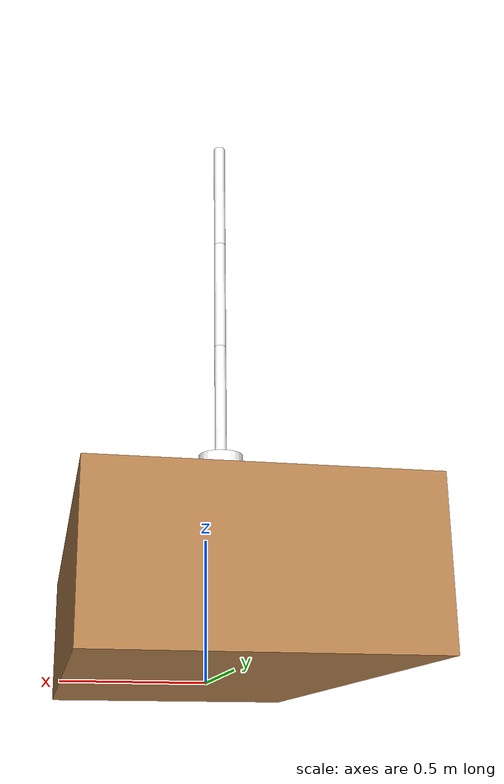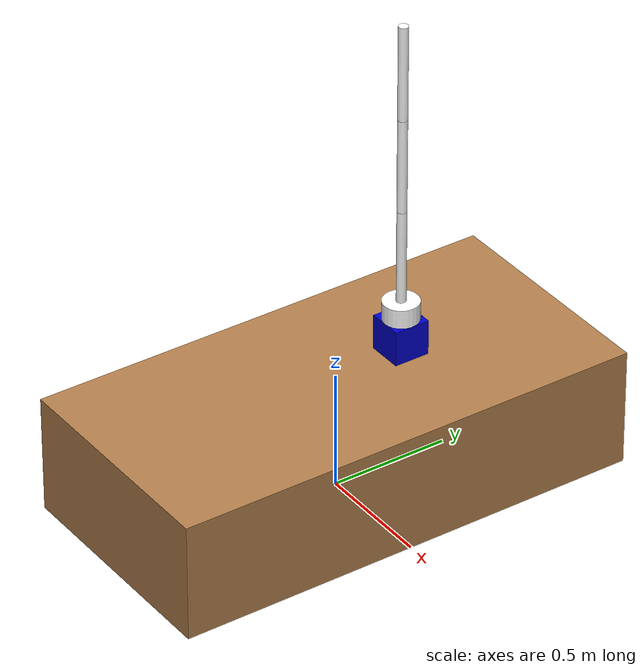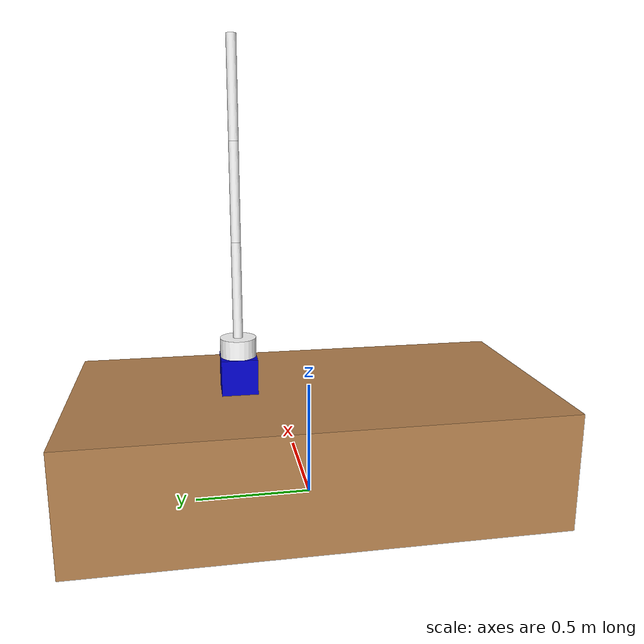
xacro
<?xml version="1.0"?>
<robot name="rosarm" xmlns:xacro="http://ros.org/wiki/xacro" >

 <material name="blue">
 	<color rgba="0 0 0.8 1"/>
 </material>

 <material name="white">
	 <color rgba="1 1 1 1"/>
 </material>

	<link name="world"/>

 <xacro:include filename="$(find rosarm_pkg)/urdf/table.urdf.xacro" />

 <xacro:property name="m" value="2" />
 <xacro:property name="l1" value="0.15" />
 <xacro:property name="b1" value="0.15" />
 <xacro:property name="h1" value="0.15" />

	<link name="base_link">
		<visual>
			<origin rpy="0 0 0" xyz="0 0 0"/>
			<geometry>
					<box size="${l1} ${b1} ${h1}"/>
			</geometry>
			<material name="blue"/>
		</visual>

		<collision name="collision_base">
			<geometry>
					<box size="${l1} ${b1} ${h1}"/>
			</geometry>
		</collision>

		<inertial>
			<mass value="${m}"/>
			<origin rpy="0 0 0" xyz="0 0 0"/>
			<inertia ixx="${m*h1*b1/12.0}" ixy="0" ixz="0" iyy="${m*l1*h1/12.0}" iyz="0" izz="${m*l1*b1/12.0}"/>
		</inertial>
	</link>

	<joint name="world_to_base" type="fixed">
		<parent link="world"/>
		<child link="base_link"/>
		<origin xyz="0 0.3 ${ht+h1/2}" rpy="0 0 0"/>
	</joint>

 <xacro:property name="l2" value="0.08" />
 <xacro:property name="r2" value="0.075" />
 <xacro:property name="m2" value="0.5" />

	<link name="base_z">
		<visual>
			<origin rpy="0 0 0" xyz="0 0 0"/>
			<geometry>
					<cylinder radius="${r2}" length="${l2}" />
			</geometry>
			<material name="white"/>
		</visual>

		<collision name="collision_right_wheel">
			<origin rpy="0 0 0" xyz="0 0 0"/>
			<geometry>
				<cylinder length="${l2}" radius="${r2}"/>
			</geometry>
		</collision>

		<inertial>
			<mass value="${m2}"/>
			<origin rpy="0 0 0" xyz="0 0 0"/>
			<inertia ixx="${m2*((3*r2*r2)+(l2*l2))/12.0}" ixy="0" ixz="0" iyy="${m2*((3*r2*r2)+(l2*l2))/12.0}" iyz="0" izz="${(m2*r2*r2)/2.0}"/>
		</inertial>
	</link>

	<joint name="joint_1" type="revolute">
		<origin rpy="0 0 0" xyz="0 0 ${l1/2+l2/2}"/>
		<child link="base_z"/>
		<parent link="base_link"/>
		<axis xyz="0 0 1"/>
		<limit upper="3.14" lower="-3.14" effort="10000" velocity="1000"/>
		<joint_properties damping="1.0" friction="1.0"/>
	</joint>

 <xacro:property name="l3" value="0.4" />
 <xacro:property name="r3" value="0.02" />
 <xacro:property name="m3" value="0.1" />

	<link name="link_1">
		<visual>
			<origin rpy="0 0 0" xyz="0 0 ${l3/2}"/>
			<geometry>
					<cylinder radius="${r3}" length="${l3}" />
			</geometry>
			<material name="white"/>
		</visual>

		<collision name="collision_link_1">
			<origin rpy="0 0 0" xyz="0 0 ${l3/2}"/>
			<geometry>
				<cylinder length="${l3}" radius="${r3}"/>
			</geometry>
		</collision>

		<inertial>
			<mass value="${m3}"/>
			<origin rpy="0 0 0" xyz="0 0 ${l3/2}"/>
			<inertia ixx="${m3*((3*r3*r3)+(l3*l3))/12.0}" ixy="0" ixz="0" iyy="${m3*((3*r3*r3)+(l3*l3))/12.0}" iyz="0" izz="${(m3*r3*r3)/2.0}"/>
		</inertial>
	</link>

	<joint name="shoulder" type="revolute">
		<origin rpy="0 0 0" xyz="0 0 ${l2/2}"/>
		<child link="link_1"/>
		<parent link="base_z"/>
		<axis xyz="1 0 0"/>
		<limit upper="3.14" lower="-3.14" effort="10000" velocity="1000"/>
		<joint_properties damping="1.0" friction="1.0"/>
	</joint>

	<link name="link_2">
		<visual>
			<origin rpy="0 0 0" xyz="0 0 ${l3/2}"/>
			<geometry>
					<cylinder radius="${r3}" length="${l3}" />
			</geometry>
			<material name="white"/>
		</visual>

		<collision name="collision_link_1">
			<origin rpy="0 0 0" xyz="0 0 ${l3/2}"/>
			<geometry>
				<cylinder length="${l3}" radius="${r3}"/>
			</geometry>
		</collision>

		<inertial>
			<mass value="${m3}"/>
			<origin rpy="0 0 0" xyz="0 0 ${l3/2}"/>
			<inertia ixx="${m3*((3*r3*r3)+(l3*l3))/12.0}" ixy="0" ixz="0" iyy="${m3*((3*r3*r3)+(l3*l3))/12.0}" iyz="0" izz="${(m3*r3*r3)/2.0}"/>
		</inertial>
	</link>

	<joint name="elbow" type="revolute">
		<origin rpy="0 0 0" xyz="0 0 ${l3}"/>
		<child link="link_2"/>
		<parent link="link_1"/>
		<axis xyz="0 1 0"/>
		<limit upper="3.14" lower="-3.14" effort="10000" velocity="1000"/>
		<joint_properties damping="1.0" friction="1.0"/>
	</joint>

	<link name="link_3">
		<visual>
			<origin rpy="0 0 0" xyz="0 0 ${l3/2}"/>
			<geometry>
					<cylinder radius="${r3}" length="${l3}" />
			</geometry>
			<material name="white"/>
		</visual>

		<collision name="collision_link_1">
			<origin rpy="0 0 0" xyz="0 0 ${l3/2}"/>
			<geometry>
				<cylinder length="${l3}" radius="${r3}"/>
			</geometry>
		</collision>

		<inertial>
			<mass value="${m3}"/>
			<origin rpy="0 0 0" xyz="0 0 ${l3/2}"/>
			<inertia ixx="${m3*((3*r3*r3)+(l3*l3))/12.0}" ixy="0" ixz="0" iyy="${m3*((3*r3*r3)+(l3*l3))/12.0}" iyz="0" izz="${(m3*r3*r3)/2.0}"/>
		</inertial>
	</link>

	<joint name="wrist" type="revolute">
		<origin rpy="0 0 0" xyz="0 0 ${l3}"/>
		<child link="link_3"/>
		<parent link="link_2"/>
		<axis xyz="1 0 0"/>
		<limit upper="3.14" lower="-3.14" effort="10000" velocity="1000"/>
		<joint_properties damping="1.0" friction="1.0"/>
	</joint>

 <xacro:include filename="$(find rosarm_pkg)/urdf/rosarm_transmission.urdf" />
 <xacro:include filename="$(find rosarm_pkg)/urdf/rosarm_plugin.urdf" />

</robot>

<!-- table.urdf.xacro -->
<robot name="table" xmlns:xacro="http://ros.org/wiki/xacro">

 <xacro:property name="mt" value="2" />
 <xacro:property name="lt" value="1" />
 <xacro:property name="bt" value="2" />
 <xacro:property name="ht" value="0.5" />

	<link name="table">
		<visual>
			<origin rpy="0 0 0" xyz="0 0 0"/>
			<geometry>
					<box size="${lt} ${bt} ${ht}"/>
			</geometry>

		</visual>

		<collision name="collision_table">
			<geometry>
					<box size="${lt} ${bt} ${ht}"/>
			</geometry>
		</collision>

		<inertial>
			<mass value="${mt}"/>
			<origin rpy="0 0 0" xyz="0 0 0"/>
			<inertia ixx="${mt*ht*bt/12.0}" ixy="0" ixz="0" iyy="${mt*lt*ht/12.0}" iyz="0" izz="${mt*lt*bt/12.0}"/>
		</inertial>
	</link>

	<gazebo reference="table">
		<material>Gazebo/Wood</material>
	</gazebo>

	<joint name="world_to_table" type="fixed">
		<parent link="world"/>
		<child link="table"/>
		<origin xyz="0 0 ${ht/2}" rpy="0 0 0"/>
	</joint>

 </robot>
